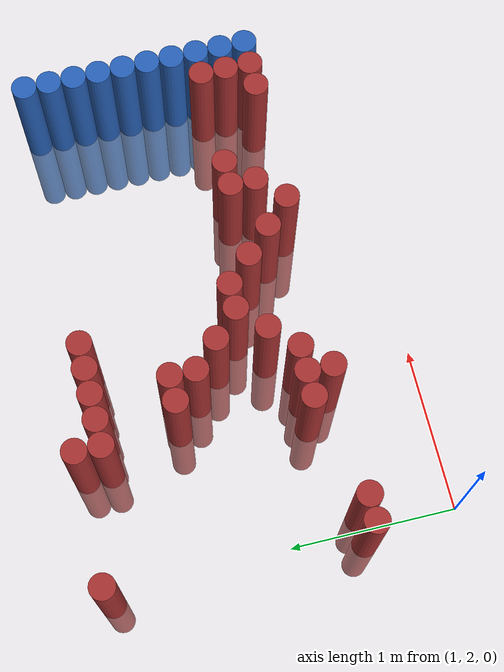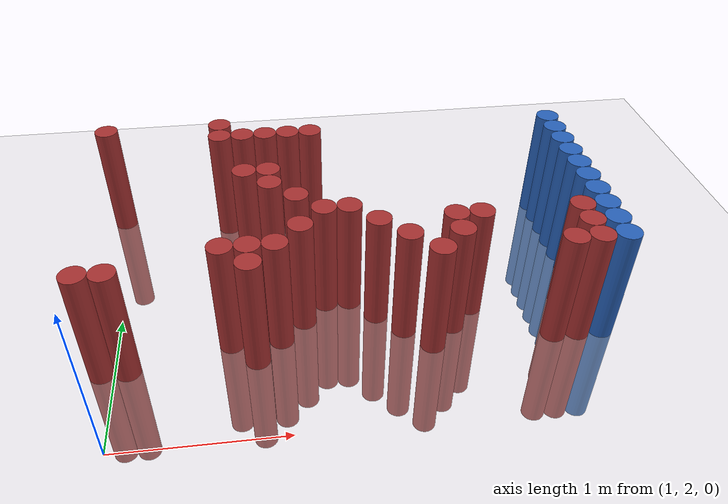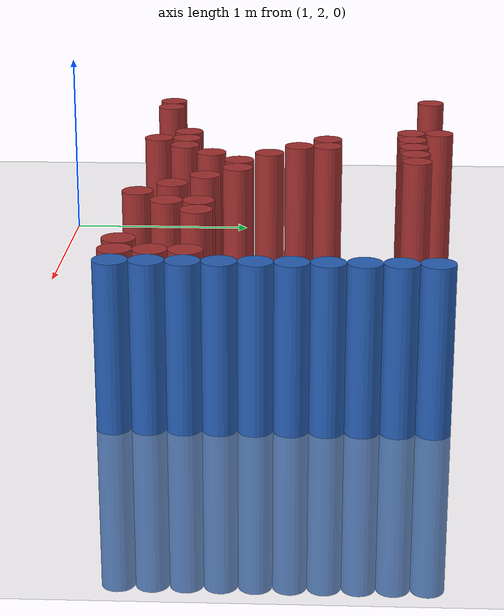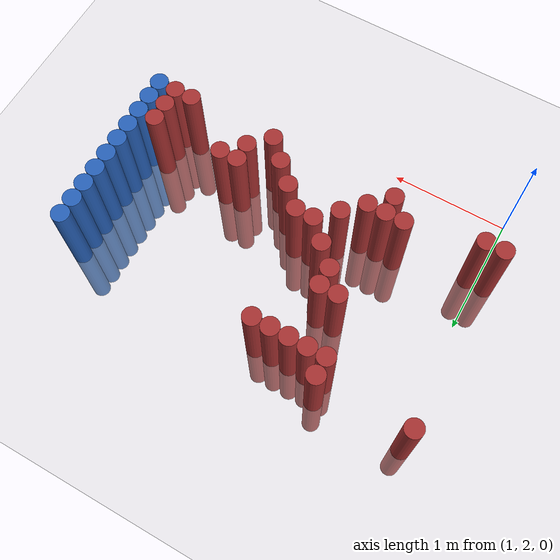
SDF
<sdf version="1.6">
 <world name="default">
  <model name="ground_plane">
   <static>1</static>
   <link name="link">
    <collision name="collision">
     <geometry><plane><normal>0 0 1</normal><size>100 100</size></plane></geometry>
     <surface><friction><ode><mu>100</mu><mu2>50</mu2></ode></friction></surface>
    </collision>
    <visual name="visual">
     <cast_shadows>0</cast_shadows>
     <geometry><plane><normal>0 0 1</normal><size>100 100</size></plane></geometry>
     <material>
      <script><uri>file://media/materials/scripts/gazebo.material</uri><name>Gazebo/Grey</name></script>
     </material>
    </visual>
   </link>
  </model>
  <model name="unit_cylinder_148">
   <static>1</static>
   <pose>3.925000 2.575000 0.000000 0.000000 0.000000 0.000000</pose>
   <link name="link">
    <inertial>
     <mass>1</mass>
     <inertia><ixx>0.145833</ixx><ixy>0</ixy><ixz>0</ixz><iyy>0.145833</iyy><iyz>0</iyz><izz>0.125</izz></inertia>
    </inertial>
    <collision name="collision">
     <geometry><cylinder><radius>0.075000</radius><length>1.5</length></cylinder></geometry>
    </collision>
    <visual name="visual">
     <geometry><cylinder><radius>0.075000</radius><length>1.5</length></cylinder></geometry>
     <material>
      <ambient>0.152000 0.379000 0.720000 1</ambient>
      <diffuse>0.152000 0.379000 0.720000 1</diffuse>
     </material>
     <material>
      <script><name>Gazebo/Grey</name><uri>file://media/materials/scripts/gazebo.material</uri></script>
     </material>
    </visual>
   </link>
  </model>
  <model name="unit_cylinder_150">
   <static>1</static>
   <pose>3.925000 2.725000 0.000000 0.000000 0.000000 0.000000</pose>
   <link name="link">
    <inertial>
     <mass>1</mass>
     <inertia><ixx>0.145833</ixx><ixy>0</ixy><ixz>0</ixz><iyy>0.145833</iyy><iyz>0</iyz><izz>0.125</izz></inertia>
    </inertial>
    <collision name="collision">
     <geometry><cylinder><radius>0.075000</radius><length>1.5</length></cylinder></geometry>
    </collision>
    <visual name="visual">
     <geometry><cylinder><radius>0.075000</radius><length>1.5</length></cylinder></geometry>
     <material>
      <ambient>0.152000 0.379000 0.720000 1</ambient>
      <diffuse>0.152000 0.379000 0.720000 1</diffuse>
     </material>
     <material>
      <script><name>Gazebo/Grey</name><uri>file://media/materials/scripts/gazebo.material</uri></script>
     </material>
    </visual>
   </link>
  </model>
  <model name="unit_cylinder_152">
   <static>1</static>
   <pose>3.925000 2.875000 0.000000 0.000000 0.000000 0.000000</pose>
   <link name="link">
    <inertial>
     <mass>1</mass>
     <inertia><ixx>0.145833</ixx><ixy>0</ixy><ixz>0</ixz><iyy>0.145833</iyy><iyz>0</iyz><izz>0.125</izz></inertia>
    </inertial>
    <collision name="collision">
     <geometry><cylinder><radius>0.075000</radius><length>1.5</length></cylinder></geometry>
    </collision>
    <visual name="visual">
     <geometry><cylinder><radius>0.075000</radius><length>1.5</length></cylinder></geometry>
     <material>
      <ambient>0.152000 0.379000 0.720000 1</ambient>
      <diffuse>0.152000 0.379000 0.720000 1</diffuse>
     </material>
     <material>
      <script><name>Gazebo/Grey</name><uri>file://media/materials/scripts/gazebo.material</uri></script>
     </material>
    </visual>
   </link>
  </model>
  <model name="unit_cylinder_154">
   <static>1</static>
   <pose>3.925000 3.025000 0.000000 0.000000 0.000000 0.000000</pose>
   <link name="link">
    <inertial>
     <mass>1</mass>
     <inertia><ixx>0.145833</ixx><ixy>0</ixy><ixz>0</ixz><iyy>0.145833</iyy><iyz>0</iyz><izz>0.125</izz></inertia>
    </inertial>
    <collision name="collision">
     <geometry><cylinder><radius>0.075000</radius><length>1.5</length></cylinder></geometry>
    </collision>
    <visual name="visual">
     <geometry><cylinder><radius>0.075000</radius><length>1.5</length></cylinder></geometry>
     <material>
      <ambient>0.152000 0.379000 0.720000 1</ambient>
      <diffuse>0.152000 0.379000 0.720000 1</diffuse>
     </material>
     <material>
      <script><name>Gazebo/Grey</name><uri>file://media/materials/scripts/gazebo.material</uri></script>
     </material>
    </visual>
   </link>
  </model>
  <model name="unit_cylinder_156">
   <static>1</static>
   <pose>3.925000 3.175000 0.000000 0.000000 0.000000 0.000000</pose>
   <link name="link">
    <inertial>
     <mass>1</mass>
     <inertia><ixx>0.145833</ixx><ixy>0</ixy><ixz>0</ixz><iyy>0.145833</iyy><iyz>0</iyz><izz>0.125</izz></inertia>
    </inertial>
    <collision name="collision">
     <geometry><cylinder><radius>0.075000</radius><length>1.5</length></cylinder></geometry>
    </collision>
    <visual name="visual">
     <geometry><cylinder><radius>0.075000</radius><length>1.5</length></cylinder></geometry>
     <material>
      <ambient>0.152000 0.379000 0.720000 1</ambient>
      <diffuse>0.152000 0.379000 0.720000 1</diffuse>
     </material>
     <material>
      <script><name>Gazebo/Grey</name><uri>file://media/materials/scripts/gazebo.material</uri></script>
     </material>
    </visual>
   </link>
  </model>
  <model name="unit_cylinder_158">
   <static>1</static>
   <pose>3.925000 3.325000 0.000000 0.000000 0.000000 0.000000</pose>
   <link name="link">
    <inertial>
     <mass>1</mass>
     <inertia><ixx>0.145833</ixx><ixy>0</ixy><ixz>0</ixz><iyy>0.145833</iyy><iyz>0</iyz><izz>0.125</izz></inertia>
    </inertial>
    <collision name="collision">
     <geometry><cylinder><radius>0.075000</radius><length>1.5</length></cylinder></geometry>
    </collision>
    <visual name="visual">
     <geometry><cylinder><radius>0.075000</radius><length>1.5</length></cylinder></geometry>
     <material>
      <ambient>0.152000 0.379000 0.720000 1</ambient>
      <diffuse>0.152000 0.379000 0.720000 1</diffuse>
     </material>
     <material>
      <script><name>Gazebo/Grey</name><uri>file://media/materials/scripts/gazebo.material</uri></script>
     </material>
    </visual>
   </link>
  </model>
  <model name="unit_cylinder_160">
   <static>1</static>
   <pose>3.925000 3.475000 0.000000 0.000000 0.000000 0.000000</pose>
   <link name="link">
    <inertial>
     <mass>1</mass>
     <inertia><ixx>0.145833</ixx><ixy>0</ixy><ixz>0</ixz><iyy>0.145833</iyy><iyz>0</iyz><izz>0.125</izz></inertia>
    </inertial>
    <collision name="collision">
     <geometry><cylinder><radius>0.075000</radius><length>1.5</length></cylinder></geometry>
    </collision>
    <visual name="visual">
     <geometry><cylinder><radius>0.075000</radius><length>1.5</length></cylinder></geometry>
     <material>
      <ambient>0.152000 0.379000 0.720000 1</ambient>
      <diffuse>0.152000 0.379000 0.720000 1</diffuse>
     </material>
     <material>
      <script><name>Gazebo/Grey</name><uri>file://media/materials/scripts/gazebo.material</uri></script>
     </material>
    </visual>
   </link>
  </model>
  <model name="unit_cylinder_162">
   <static>1</static>
   <pose>3.925000 3.625000 0.000000 0.000000 0.000000 0.000000</pose>
   <link name="link">
    <inertial>
     <mass>1</mass>
     <inertia><ixx>0.145833</ixx><ixy>0</ixy><ixz>0</ixz><iyy>0.145833</iyy><iyz>0</iyz><izz>0.125</izz></inertia>
    </inertial>
    <collision name="collision">
     <geometry><cylinder><radius>0.075000</radius><length>1.5</length></cylinder></geometry>
    </collision>
    <visual name="visual">
     <geometry><cylinder><radius>0.075000</radius><length>1.5</length></cylinder></geometry>
     <material>
      <ambient>0.152000 0.379000 0.720000 1</ambient>
      <diffuse>0.152000 0.379000 0.720000 1</diffuse>
     </material>
     <material>
      <script><name>Gazebo/Grey</name><uri>file://media/materials/scripts/gazebo.material</uri></script>
     </material>
    </visual>
   </link>
  </model>
  <model name="unit_cylinder_164">
   <static>1</static>
   <pose>3.925000 3.775000 0.000000 0.000000 0.000000 0.000000</pose>
   <link name="link">
    <inertial>
     <mass>1</mass>
     <inertia><ixx>0.145833</ixx><ixy>0</ixy><ixz>0</ixz><iyy>0.145833</iyy><iyz>0</iyz><izz>0.125</izz></inertia>
    </inertial>
    <collision name="collision">
     <geometry><cylinder><radius>0.075000</radius><length>1.5</length></cylinder></geometry>
    </collision>
    <visual name="visual">
     <geometry><cylinder><radius>0.075000</radius><length>1.5</length></cylinder></geometry>
     <material>
      <ambient>0.152000 0.379000 0.720000 1</ambient>
      <diffuse>0.152000 0.379000 0.720000 1</diffuse>
     </material>
     <material>
      <script><name>Gazebo/Grey</name><uri>file://media/materials/scripts/gazebo.material</uri></script>
     </material>
    </visual>
   </link>
  </model>
  <model name="unit_cylinder_166">
   <static>1</static>
   <pose>3.925000 3.925000 0.000000 0.000000 0.000000 0.000000</pose>
   <link name="link">
    <inertial>
     <mass>1</mass>
     <inertia><ixx>0.145833</ixx><ixy>0</ixy><ixz>0</ixz><iyy>0.145833</iyy><iyz>0</iyz><izz>0.125</izz></inertia>
    </inertial>
    <collision name="collision">
     <geometry><cylinder><radius>0.075000</radius><length>1.5</length></cylinder></geometry>
    </collision>
    <visual name="visual">
     <geometry><cylinder><radius>0.075000</radius><length>1.5</length></cylinder></geometry>
     <material>
      <ambient>0.152000 0.379000 0.720000 1</ambient>
      <diffuse>0.152000 0.379000 0.720000 1</diffuse>
     </material>
     <material>
      <script><name>Gazebo/Grey</name><uri>file://media/materials/scripts/gazebo.material</uri></script>
     </material>
    </visual>
   </link>
  </model>
  <model name="unit_cylinder_386">
   <static>1</static>
   <pose>0.925000 2.575000 0.000000 0.000000 0.000000 0.000000</pose>
   <link name="link">
    <inertial>
     <mass>1</mass>
     <inertia><ixx>0.145833</ixx><ixy>0</ixy><ixz>0</ixz><iyy>0.145833</iyy><iyz>0</iyz><izz>0.125</izz></inertia>
    </inertial>
    <collision name="collision">
     <geometry><cylinder><radius>0.075000</radius><length>1.5</length></cylinder></geometry>
    </collision>
    <visual name="visual">
     <geometry><cylinder><radius>0.075000</radius><length>1.5</length></cylinder></geometry>
     <material>
      <ambient>0.648000 0.192000 0.192000 1</ambient>
      <diffuse>0.648000 0.192000 0.192000 1</diffuse>
     </material>
     <material>
      <script><name>Gazebo/Grey</name><uri>file://media/materials/scripts/gazebo.material</uri></script>
     </material>
    </visual>
   </link>
  </model>
  <model name="unit_cylinder_387">
   <static>1</static>
   <pose>0.925000 4.075000 0.000000 0.000000 0.000000 0.000000</pose>
   <link name="link">
    <inertial>
     <mass>1</mass>
     <inertia><ixx>0.145833</ixx><ixy>0</ixy><ixz>0</ixz><iyy>0.145833</iyy><iyz>0</iyz><izz>0.125</izz></inertia>
    </inertial>
    <collision name="collision">
     <geometry><cylinder><radius>0.075000</radius><length>1.5</length></cylinder></geometry>
    </collision>
    <visual name="visual">
     <geometry><cylinder><radius>0.075000</radius><length>1.5</length></cylinder></geometry>
     <material>
      <ambient>0.648000 0.192000 0.192000 1</ambient>
      <diffuse>0.648000 0.192000 0.192000 1</diffuse>
     </material>
     <material>
      <script><name>Gazebo/Grey</name><uri>file://media/materials/scripts/gazebo.material</uri></script>
     </material>
    </visual>
   </link>
  </model>
  <model name="unit_cylinder_391">
   <static>1</static>
   <pose>1.075000 2.575000 0.000000 0.000000 0.000000 0.000000</pose>
   <link name="link">
    <inertial>
     <mass>1</mass>
     <inertia><ixx>0.145833</ixx><ixy>0</ixy><ixz>0</ixz><iyy>0.145833</iyy><iyz>0</iyz><izz>0.125</izz></inertia>
    </inertial>
    <collision name="collision">
     <geometry><cylinder><radius>0.075000</radius><length>1.5</length></cylinder></geometry>
    </collision>
    <visual name="visual">
     <geometry><cylinder><radius>0.075000</radius><length>1.5</length></cylinder></geometry>
     <material>
      <ambient>0.648000 0.192000 0.192000 1</ambient>
      <diffuse>0.648000 0.192000 0.192000 1</diffuse>
     </material>
     <material>
      <script><name>Gazebo/Grey</name><uri>file://media/materials/scripts/gazebo.material</uri></script>
     </material>
    </visual>
   </link>
  </model>
  <model name="unit_cylinder_401">
   <static>1</static>
   <pose>1.675000 2.725000 0.000000 0.000000 0.000000 0.000000</pose>
   <link name="link">
    <inertial>
     <mass>1</mass>
     <inertia><ixx>0.145833</ixx><ixy>0</ixy><ixz>0</ixz><iyy>0.145833</iyy><iyz>0</iyz><izz>0.125</izz></inertia>
    </inertial>
    <collision name="collision">
     <geometry><cylinder><radius>0.075000</radius><length>1.5</length></cylinder></geometry>
    </collision>
    <visual name="visual">
     <geometry><cylinder><radius>0.075000</radius><length>1.5</length></cylinder></geometry>
     <material>
      <ambient>0.648000 0.192000 0.192000 1</ambient>
      <diffuse>0.648000 0.192000 0.192000 1</diffuse>
     </material>
     <material>
      <script><name>Gazebo/Grey</name><uri>file://media/materials/scripts/gazebo.material</uri></script>
     </material>
    </visual>
   </link>
  </model>
  <model name="unit_cylinder_402">
   <static>1</static>
   <pose>1.675000 3.925000 0.000000 0.000000 0.000000 0.000000</pose>
   <link name="link">
    <inertial>
     <mass>1</mass>
     <inertia><ixx>0.145833</ixx><ixy>0</ixy><ixz>0</ixz><iyy>0.145833</iyy><iyz>0</iyz><izz>0.125</izz></inertia>
    </inertial>
    <collision name="collision">
     <geometry><cylinder><radius>0.075000</radius><length>1.5</length></cylinder></geometry>
    </collision>
    <visual name="visual">
     <geometry><cylinder><radius>0.075000</radius><length>1.5</length></cylinder></geometry>
     <material>
      <ambient>0.648000 0.192000 0.192000 1</ambient>
      <diffuse>0.648000 0.192000 0.192000 1</diffuse>
     </material>
     <material>
      <script><name>Gazebo/Grey</name><uri>file://media/materials/scripts/gazebo.material</uri></script>
     </material>
    </visual>
   </link>
  </model>
  <model name="unit_cylinder_403">
   <static>1</static>
   <pose>1.675000 4.075000 0.000000 0.000000 0.000000 0.000000</pose>
   <link name="link">
    <inertial>
     <mass>1</mass>
     <inertia><ixx>0.145833</ixx><ixy>0</ixy><ixz>0</ixz><iyy>0.145833</iyy><iyz>0</iyz><izz>0.125</izz></inertia>
    </inertial>
    <collision name="collision">
     <geometry><cylinder><radius>0.075000</radius><length>1.5</length></cylinder></geometry>
    </collision>
    <visual name="visual">
     <geometry><cylinder><radius>0.075000</radius><length>1.5</length></cylinder></geometry>
     <material>
      <ambient>0.648000 0.192000 0.192000 1</ambient>
      <diffuse>0.648000 0.192000 0.192000 1</diffuse>
     </material>
     <material>
      <script><name>Gazebo/Grey</name><uri>file://media/materials/scripts/gazebo.material</uri></script>
     </material>
    </visual>
   </link>
  </model>
  <model name="unit_cylinder_408">
   <static>1</static>
   <pose>1.825000 2.575000 0.000000 0.000000 0.000000 0.000000</pose>
   <link name="link">
    <inertial>
     <mass>1</mass>
     <inertia><ixx>0.145833</ixx><ixy>0</ixy><ixz>0</ixz><iyy>0.145833</iyy><iyz>0</iyz><izz>0.125</izz></inertia>
    </inertial>
    <collision name="collision">
     <geometry><cylinder><radius>0.075000</radius><length>1.5</length></cylinder></geometry>
    </collision>
    <visual name="visual">
     <geometry><cylinder><radius>0.075000</radius><length>1.5</length></cylinder></geometry>
     <material>
      <ambient>0.648000 0.192000 0.192000 1</ambient>
      <diffuse>0.648000 0.192000 0.192000 1</diffuse>
     </material>
     <material>
      <script><name>Gazebo/Grey</name><uri>file://media/materials/scripts/gazebo.material</uri></script>
     </material>
    </visual>
   </link>
  </model>
  <model name="unit_cylinder_409">
   <static>1</static>
   <pose>1.825000 2.725000 0.000000 0.000000 0.000000 0.000000</pose>
   <link name="link">
    <inertial>
     <mass>1</mass>
     <inertia><ixx>0.145833</ixx><ixy>0</ixy><ixz>0</ixz><iyy>0.145833</iyy><iyz>0</iyz><izz>0.125</izz></inertia>
    </inertial>
    <collision name="collision">
     <geometry><cylinder><radius>0.075000</radius><length>1.5</length></cylinder></geometry>
    </collision>
    <visual name="visual">
     <geometry><cylinder><radius>0.075000</radius><length>1.5</length></cylinder></geometry>
     <material>
      <ambient>0.648000 0.192000 0.192000 1</ambient>
      <diffuse>0.648000 0.192000 0.192000 1</diffuse>
     </material>
     <material>
      <script><name>Gazebo/Grey</name><uri>file://media/materials/scripts/gazebo.material</uri></script>
     </material>
    </visual>
   </link>
  </model>
  <model name="unit_cylinder_410">
   <static>1</static>
   <pose>1.825000 3.475000 0.000000 0.000000 0.000000 0.000000</pose>
   <link name="link">
    <inertial>
     <mass>1</mass>
     <inertia><ixx>0.145833</ixx><ixy>0</ixy><ixz>0</ixz><iyy>0.145833</iyy><iyz>0</iyz><izz>0.125</izz></inertia>
    </inertial>
    <collision name="collision">
     <geometry><cylinder><radius>0.075000</radius><length>1.5</length></cylinder></geometry>
    </collision>
    <visual name="visual">
     <geometry><cylinder><radius>0.075000</radius><length>1.5</length></cylinder></geometry>
     <material>
      <ambient>0.648000 0.192000 0.192000 1</ambient>
      <diffuse>0.648000 0.192000 0.192000 1</diffuse>
     </material>
     <material>
      <script><name>Gazebo/Grey</name><uri>file://media/materials/scripts/gazebo.material</uri></script>
     </material>
    </visual>
   </link>
  </model>
  <model name="unit_cylinder_411">
   <static>1</static>
   <pose>1.825000 3.925000 0.000000 0.000000 0.000000 0.000000</pose>
   <link name="link">
    <inertial>
     <mass>1</mass>
     <inertia><ixx>0.145833</ixx><ixy>0</ixy><ixz>0</ixz><iyy>0.145833</iyy><iyz>0</iyz><izz>0.125</izz></inertia>
    </inertial>
    <collision name="collision">
     <geometry><cylinder><radius>0.075000</radius><length>1.5</length></cylinder></geometry>
    </collision>
    <visual name="visual">
     <geometry><cylinder><radius>0.075000</radius><length>1.5</length></cylinder></geometry>
     <material>
      <ambient>0.648000 0.192000 0.192000 1</ambient>
      <diffuse>0.648000 0.192000 0.192000 1</diffuse>
     </material>
     <material>
      <script><name>Gazebo/Grey</name><uri>file://media/materials/scripts/gazebo.material</uri></script>
     </material>
    </visual>
   </link>
  </model>
  <model name="unit_cylinder_415">
   <static>1</static>
   <pose>1.975000 2.725000 0.000000 0.000000 0.000000 0.000000</pose>
   <link name="link">
    <inertial>
     <mass>1</mass>
     <inertia><ixx>0.145833</ixx><ixy>0</ixy><ixz>0</ixz><iyy>0.145833</iyy><iyz>0</iyz><izz>0.125</izz></inertia>
    </inertial>
    <collision name="collision">
     <geometry><cylinder><radius>0.075000</radius><length>1.5</length></cylinder></geometry>
    </collision>
    <visual name="visual">
     <geometry><cylinder><radius>0.075000</radius><length>1.5</length></cylinder></geometry>
     <material>
      <ambient>0.648000 0.192000 0.192000 1</ambient>
      <diffuse>0.648000 0.192000 0.192000 1</diffuse>
     </material>
     <material>
      <script><name>Gazebo/Grey</name><uri>file://media/materials/scripts/gazebo.material</uri></script>
     </material>
    </visual>
   </link>
  </model>
  <model name="unit_cylinder_416">
   <static>1</static>
   <pose>1.975000 3.325000 0.000000 0.000000 0.000000 0.000000</pose>
   <link name="link">
    <inertial>
     <mass>1</mass>
     <inertia><ixx>0.145833</ixx><ixy>0</ixy><ixz>0</ixz><iyy>0.145833</iyy><iyz>0</iyz><izz>0.125</izz></inertia>
    </inertial>
    <collision name="collision">
     <geometry><cylinder><radius>0.075000</radius><length>1.5</length></cylinder></geometry>
    </collision>
    <visual name="visual">
     <geometry><cylinder><radius>0.075000</radius><length>1.5</length></cylinder></geometry>
     <material>
      <ambient>0.648000 0.192000 0.192000 1</ambient>
      <diffuse>0.648000 0.192000 0.192000 1</diffuse>
     </material>
     <material>
      <script><name>Gazebo/Grey</name><uri>file://media/materials/scripts/gazebo.material</uri></script>
     </material>
    </visual>
   </link>
  </model>
  <model name="unit_cylinder_417">
   <static>1</static>
   <pose>1.975000 3.475000 0.000000 0.000000 0.000000 0.000000</pose>
   <link name="link">
    <inertial>
     <mass>1</mass>
     <inertia><ixx>0.145833</ixx><ixy>0</ixy><ixz>0</ixz><iyy>0.145833</iyy><iyz>0</iyz><izz>0.125</izz></inertia>
    </inertial>
    <collision name="collision">
     <geometry><cylinder><radius>0.075000</radius><length>1.5</length></cylinder></geometry>
    </collision>
    <visual name="visual">
     <geometry><cylinder><radius>0.075000</radius><length>1.5</length></cylinder></geometry>
     <material>
      <ambient>0.648000 0.192000 0.192000 1</ambient>
      <diffuse>0.648000 0.192000 0.192000 1</diffuse>
     </material>
     <material>
      <script><name>Gazebo/Grey</name><uri>file://media/materials/scripts/gazebo.material</uri></script>
     </material>
    </visual>
   </link>
  </model>
  <model name="unit_cylinder_418">
   <static>1</static>
   <pose>1.975000 3.925000 0.000000 0.000000 0.000000 0.000000</pose>
   <link name="link">
    <inertial>
     <mass>1</mass>
     <inertia><ixx>0.145833</ixx><ixy>0</ixy><ixz>0</ixz><iyy>0.145833</iyy><iyz>0</iyz><izz>0.125</izz></inertia>
    </inertial>
    <collision name="collision">
     <geometry><cylinder><radius>0.075000</radius><length>1.5</length></cylinder></geometry>
    </collision>
    <visual name="visual">
     <geometry><cylinder><radius>0.075000</radius><length>1.5</length></cylinder></geometry>
     <material>
      <ambient>0.648000 0.192000 0.192000 1</ambient>
      <diffuse>0.648000 0.192000 0.192000 1</diffuse>
     </material>
     <material>
      <script><name>Gazebo/Grey</name><uri>file://media/materials/scripts/gazebo.material</uri></script>
     </material>
    </visual>
   </link>
  </model>
  <model name="unit_cylinder_423">
   <static>1</static>
   <pose>2.125000 2.875000 0.000000 0.000000 0.000000 0.000000</pose>
   <link name="link">
    <inertial>
     <mass>1</mass>
     <inertia><ixx>0.145833</ixx><ixy>0</ixy><ixz>0</ixz><iyy>0.145833</iyy><iyz>0</iyz><izz>0.125</izz></inertia>
    </inertial>
    <collision name="collision">
     <geometry><cylinder><radius>0.075000</radius><length>1.5</length></cylinder></geometry>
    </collision>
    <visual name="visual">
     <geometry><cylinder><radius>0.075000</radius><length>1.5</length></cylinder></geometry>
     <material>
      <ambient>0.648000 0.192000 0.192000 1</ambient>
      <diffuse>0.648000 0.192000 0.192000 1</diffuse>
     </material>
     <material>
      <script><name>Gazebo/Grey</name><uri>file://media/materials/scripts/gazebo.material</uri></script>
     </material>
    </visual>
   </link>
  </model>
  <model name="unit_cylinder_424">
   <static>1</static>
   <pose>2.125000 3.175000 0.000000 0.000000 0.000000 0.000000</pose>
   <link name="link">
    <inertial>
     <mass>1</mass>
     <inertia><ixx>0.145833</ixx><ixy>0</ixy><ixz>0</ixz><iyy>0.145833</iyy><iyz>0</iyz><izz>0.125</izz></inertia>
    </inertial>
    <collision name="collision">
     <geometry><cylinder><radius>0.075000</radius><length>1.5</length></cylinder></geometry>
    </collision>
    <visual name="visual">
     <geometry><cylinder><radius>0.075000</radius><length>1.5</length></cylinder></geometry>
     <material>
      <ambient>0.648000 0.192000 0.192000 1</ambient>
      <diffuse>0.648000 0.192000 0.192000 1</diffuse>
     </material>
     <material>
      <script><name>Gazebo/Grey</name><uri>file://media/materials/scripts/gazebo.material</uri></script>
     </material>
    </visual>
   </link>
  </model>
  <model name="unit_cylinder_425">
   <static>1</static>
   <pose>2.125000 3.925000 0.000000 0.000000 0.000000 0.000000</pose>
   <link name="link">
    <inertial>
     <mass>1</mass>
     <inertia><ixx>0.145833</ixx><ixy>0</ixy><ixz>0</ixz><iyy>0.145833</iyy><iyz>0</iyz><izz>0.125</izz></inertia>
    </inertial>
    <collision name="collision">
     <geometry><cylinder><radius>0.075000</radius><length>1.5</length></cylinder></geometry>
    </collision>
    <visual name="visual">
     <geometry><cylinder><radius>0.075000</radius><length>1.5</length></cylinder></geometry>
     <material>
      <ambient>0.648000 0.192000 0.192000 1</ambient>
      <diffuse>0.648000 0.192000 0.192000 1</diffuse>
     </material>
     <material>
      <script><name>Gazebo/Grey</name><uri>file://media/materials/scripts/gazebo.material</uri></script>
     </material>
    </visual>
   </link>
  </model>
  <model name="unit_cylinder_430">
   <static>1</static>
   <pose>2.275000 3.025000 0.000000 0.000000 0.000000 0.000000</pose>
   <link name="link">
    <inertial>
     <mass>1</mass>
     <inertia><ixx>0.145833</ixx><ixy>0</ixy><ixz>0</ixz><iyy>0.145833</iyy><iyz>0</iyz><izz>0.125</izz></inertia>
    </inertial>
    <collision name="collision">
     <geometry><cylinder><radius>0.075000</radius><length>1.5</length></cylinder></geometry>
    </collision>
    <visual name="visual">
     <geometry><cylinder><radius>0.075000</radius><length>1.5</length></cylinder></geometry>
     <material>
      <ambient>0.648000 0.192000 0.192000 1</ambient>
      <diffuse>0.648000 0.192000 0.192000 1</diffuse>
     </material>
     <material>
      <script><name>Gazebo/Grey</name><uri>file://media/materials/scripts/gazebo.material</uri></script>
     </material>
    </visual>
   </link>
  </model>
  <model name="unit_cylinder_431">
   <static>1</static>
   <pose>2.275000 3.925000 0.000000 0.000000 0.000000 0.000000</pose>
   <link name="link">
    <inertial>
     <mass>1</mass>
     <inertia><ixx>0.145833</ixx><ixy>0</ixy><ixz>0</ixz><iyy>0.145833</iyy><iyz>0</iyz><izz>0.125</izz></inertia>
    </inertial>
    <collision name="collision">
     <geometry><cylinder><radius>0.075000</radius><length>1.5</length></cylinder></geometry>
    </collision>
    <visual name="visual">
     <geometry><cylinder><radius>0.075000</radius><length>1.5</length></cylinder></geometry>
     <material>
      <ambient>0.648000 0.192000 0.192000 1</ambient>
      <diffuse>0.648000 0.192000 0.192000 1</diffuse>
     </material>
     <material>
      <script><name>Gazebo/Grey</name><uri>file://media/materials/scripts/gazebo.material</uri></script>
     </material>
    </visual>
   </link>
  </model>
  <model name="unit_cylinder_438">
   <static>1</static>
   <pose>2.425000 3.025000 0.000000 0.000000 0.000000 0.000000</pose>
   <link name="link">
    <inertial>
     <mass>1</mass>
     <inertia><ixx>0.145833</ixx><ixy>0</ixy><ixz>0</ixz><iyy>0.145833</iyy><iyz>0</iyz><izz>0.125</izz></inertia>
    </inertial>
    <collision name="collision">
     <geometry><cylinder><radius>0.075000</radius><length>1.5</length></cylinder></geometry>
    </collision>
    <visual name="visual">
     <geometry><cylinder><radius>0.075000</radius><length>1.5</length></cylinder></geometry>
     <material>
      <ambient>0.648000 0.192000 0.192000 1</ambient>
      <diffuse>0.648000 0.192000 0.192000 1</diffuse>
     </material>
     <material>
      <script><name>Gazebo/Grey</name><uri>file://media/materials/scripts/gazebo.material</uri></script>
     </material>
    </visual>
   </link>
  </model>
  <model name="unit_cylinder_444">
   <static>1</static>
   <pose>2.575000 2.875000 0.000000 0.000000 0.000000 0.000000</pose>
   <link name="link">
    <inertial>
     <mass>1</mass>
     <inertia><ixx>0.145833</ixx><ixy>0</ixy><ixz>0</ixz><iyy>0.145833</iyy><iyz>0</iyz><izz>0.125</izz></inertia>
    </inertial>
    <collision name="collision">
     <geometry><cylinder><radius>0.075000</radius><length>1.5</length></cylinder></geometry>
    </collision>
    <visual name="visual">
     <geometry><cylinder><radius>0.075000</radius><length>1.5</length></cylinder></geometry>
     <material>
      <ambient>0.648000 0.192000 0.192000 1</ambient>
      <diffuse>0.648000 0.192000 0.192000 1</diffuse>
     </material>
     <material>
      <script><name>Gazebo/Grey</name><uri>file://media/materials/scripts/gazebo.material</uri></script>
     </material>
    </visual>
   </link>
  </model>
  <model name="unit_cylinder_448">
   <static>1</static>
   <pose>2.725000 2.725000 0.000000 0.000000 0.000000 0.000000</pose>
   <link name="link">
    <inertial>
     <mass>1</mass>
     <inertia><ixx>0.145833</ixx><ixy>0</ixy><ixz>0</ixz><iyy>0.145833</iyy><iyz>0</iyz><izz>0.125</izz></inertia>
    </inertial>
    <collision name="collision">
     <geometry><cylinder><radius>0.075000</radius><length>1.5</length></cylinder></geometry>
    </collision>
    <visual name="visual">
     <geometry><cylinder><radius>0.075000</radius><length>1.5</length></cylinder></geometry>
     <material>
      <ambient>0.648000 0.192000 0.192000 1</ambient>
      <diffuse>0.648000 0.192000 0.192000 1</diffuse>
     </material>
     <material>
      <script><name>Gazebo/Grey</name><uri>file://media/materials/scripts/gazebo.material</uri></script>
     </material>
    </visual>
   </link>
  </model>
  <model name="unit_cylinder_449">
   <static>1</static>
   <pose>2.875000 2.575000 0.000000 0.000000 0.000000 0.000000</pose>
   <link name="link">
    <inertial>
     <mass>1</mass>
     <inertia><ixx>0.145833</ixx><ixy>0</ixy><ixz>0</ixz><iyy>0.145833</iyy><iyz>0</iyz><izz>0.125</izz></inertia>
    </inertial>
    <collision name="collision">
     <geometry><cylinder><radius>0.075000</radius><length>1.5</length></cylinder></geometry>
    </collision>
    <visual name="visual">
     <geometry><cylinder><radius>0.075000</radius><length>1.5</length></cylinder></geometry>
     <material>
      <ambient>0.648000 0.192000 0.192000 1</ambient>
      <diffuse>0.648000 0.192000 0.192000 1</diffuse>
     </material>
     <material>
      <script><name>Gazebo/Grey</name><uri>file://media/materials/scripts/gazebo.material</uri></script>
     </material>
    </visual>
   </link>
  </model>
  <model name="unit_cylinder_452">
   <static>1</static>
   <pose>3.025000 2.725000 0.000000 0.000000 0.000000 0.000000</pose>
   <link name="link">
    <inertial>
     <mass>1</mass>
     <inertia><ixx>0.145833</ixx><ixy>0</ixy><ixz>0</ixz><iyy>0.145833</iyy><iyz>0</iyz><izz>0.125</izz></inertia>
    </inertial>
    <collision name="collision">
     <geometry><cylinder><radius>0.075000</radius><length>1.5</length></cylinder></geometry>
    </collision>
    <visual name="visual">
     <geometry><cylinder><radius>0.075000</radius><length>1.5</length></cylinder></geometry>
     <material>
      <ambient>0.648000 0.192000 0.192000 1</ambient>
      <diffuse>0.648000 0.192000 0.192000 1</diffuse>
     </material>
     <material>
      <script><name>Gazebo/Grey</name><uri>file://media/materials/scripts/gazebo.material</uri></script>
     </material>
    </visual>
   </link>
  </model>
  <model name="unit_cylinder_453">
   <static>1</static>
   <pose>3.025000 2.875000 0.000000 0.000000 0.000000 0.000000</pose>
   <link name="link">
    <inertial>
     <mass>1</mass>
     <inertia><ixx>0.145833</ixx><ixy>0</ixy><ixz>0</ixz><iyy>0.145833</iyy><iyz>0</iyz><izz>0.125</izz></inertia>
    </inertial>
    <collision name="collision">
     <geometry><cylinder><radius>0.075000</radius><length>1.5</length></cylinder></geometry>
    </collision>
    <visual name="visual">
     <geometry><cylinder><radius>0.075000</radius><length>1.5</length></cylinder></geometry>
     <material>
      <ambient>0.648000 0.192000 0.192000 1</ambient>
      <diffuse>0.648000 0.192000 0.192000 1</diffuse>
     </material>
     <material>
      <script><name>Gazebo/Grey</name><uri>file://media/materials/scripts/gazebo.material</uri></script>
     </material>
    </visual>
   </link>
  </model>
  <model name="unit_cylinder_461">
   <static>1</static>
   <pose>3.175000 2.875000 0.000000 0.000000 0.000000 0.000000</pose>
   <link name="link">
    <inertial>
     <mass>1</mass>
     <inertia><ixx>0.145833</ixx><ixy>0</ixy><ixz>0</ixz><iyy>0.145833</iyy><iyz>0</iyz><izz>0.125</izz></inertia>
    </inertial>
    <collision name="collision">
     <geometry><cylinder><radius>0.075000</radius><length>1.5</length></cylinder></geometry>
    </collision>
    <visual name="visual">
     <geometry><cylinder><radius>0.075000</radius><length>1.5</length></cylinder></geometry>
     <material>
      <ambient>0.648000 0.192000 0.192000 1</ambient>
      <diffuse>0.648000 0.192000 0.192000 1</diffuse>
     </material>
     <material>
      <script><name>Gazebo/Grey</name><uri>file://media/materials/scripts/gazebo.material</uri></script>
     </material>
    </visual>
   </link>
  </model>
  <model name="unit_cylinder_491">
   <static>1</static>
   <pose>3.625000 2.575000 0.000000 0.000000 0.000000 0.000000</pose>
   <link name="link">
    <inertial>
     <mass>1</mass>
     <inertia><ixx>0.145833</ixx><ixy>0</ixy><ixz>0</ixz><iyy>0.145833</iyy><iyz>0</iyz><izz>0.125</izz></inertia>
    </inertial>
    <collision name="collision">
     <geometry><cylinder><radius>0.075000</radius><length>1.5</length></cylinder></geometry>
    </collision>
    <visual name="visual">
     <geometry><cylinder><radius>0.075000</radius><length>1.5</length></cylinder></geometry>
     <material>
      <ambient>0.648000 0.192000 0.192000 1</ambient>
      <diffuse>0.648000 0.192000 0.192000 1</diffuse>
     </material>
     <material>
      <script><name>Gazebo/Grey</name><uri>file://media/materials/scripts/gazebo.material</uri></script>
     </material>
    </visual>
   </link>
  </model>
  <model name="unit_cylinder_499">
   <static>1</static>
   <pose>3.775000 2.575000 0.000000 0.000000 0.000000 0.000000</pose>
   <link name="link">
    <inertial>
     <mass>1</mass>
     <inertia><ixx>0.145833</ixx><ixy>0</ixy><ixz>0</ixz><iyy>0.145833</iyy><iyz>0</iyz><izz>0.125</izz></inertia>
    </inertial>
    <collision name="collision">
     <geometry><cylinder><radius>0.075000</radius><length>1.5</length></cylinder></geometry>
    </collision>
    <visual name="visual">
     <geometry><cylinder><radius>0.075000</radius><length>1.5</length></cylinder></geometry>
     <material>
      <ambient>0.648000 0.192000 0.192000 1</ambient>
      <diffuse>0.648000 0.192000 0.192000 1</diffuse>
     </material>
     <material>
      <script><name>Gazebo/Grey</name><uri>file://media/materials/scripts/gazebo.material</uri></script>
     </material>
    </visual>
   </link>
  </model>
  <model name="unit_cylinder_500">
   <static>1</static>
   <pose>3.775000 2.725000 0.000000 0.000000 0.000000 0.000000</pose>
   <link name="link">
    <inertial>
     <mass>1</mass>
     <inertia><ixx>0.145833</ixx><ixy>0</ixy><ixz>0</ixz><iyy>0.145833</iyy><iyz>0</iyz><izz>0.125</izz></inertia>
    </inertial>
    <collision name="collision">
     <geometry><cylinder><radius>0.075000</radius><length>1.5</length></cylinder></geometry>
    </collision>
    <visual name="visual">
     <geometry><cylinder><radius>0.075000</radius><length>1.5</length></cylinder></geometry>
     <material>
      <ambient>0.648000 0.192000 0.192000 1</ambient>
      <diffuse>0.648000 0.192000 0.192000 1</diffuse>
     </material>
     <material>
      <script><name>Gazebo/Grey</name><uri>file://media/materials/scripts/gazebo.material</uri></script>
     </material>
    </visual>
   </link>
  </model>
  <model name="unit_cylinder_501">
   <static>1</static>
   <pose>3.775000 2.875000 0.000000 0.000000 0.000000 0.000000</pose>
   <link name="link">
    <inertial>
     <mass>1</mass>
     <inertia><ixx>0.145833</ixx><ixy>0</ixy><ixz>0</ixz><iyy>0.145833</iyy><iyz>0</iyz><izz>0.125</izz></inertia>
    </inertial>
    <collision name="collision">
     <geometry><cylinder><radius>0.075000</radius><length>1.5</length></cylinder></geometry>
    </collision>
    <visual name="visual">
     <geometry><cylinder><radius>0.075000</radius><length>1.5</length></cylinder></geometry>
     <material>
      <ambient>0.648000 0.192000 0.192000 1</ambient>
      <diffuse>0.648000 0.192000 0.192000 1</diffuse>
     </material>
     <material>
      <script><name>Gazebo/Grey</name><uri>file://media/materials/scripts/gazebo.material</uri></script>
     </material>
    </visual>
   </link>
  </model>
  <model name="unit_cylinder_532">
   <static>1</static>
   <pose>3.925000 2.575000 0.000000 0.000000 0.000000 0.000000</pose>
   <link name="link">
    <inertial>
     <mass>1</mass>
     <inertia><ixx>0.145833</ixx><ixy>0</ixy><ixz>0</ixz><iyy>0.145833</iyy><iyz>0</iyz><izz>0.125</izz></inertia>
    </inertial>
    <collision name="collision">
     <geometry><cylinder><radius>0.075000</radius><length>1.5</length></cylinder></geometry>
    </collision>
    <visual name="visual">
     <geometry><cylinder><radius>0.075000</radius><length>1.5</length></cylinder></geometry>
     <material>
      <ambient>0.152000 0.379000 0.720000 1</ambient>
      <diffuse>0.152000 0.379000 0.720000 1</diffuse>
     </material>
     <material>
      <script><name>Gazebo/Grey</name><uri>file://media/materials/scripts/gazebo.material</uri></script>
     </material>
    </visual>
   </link>
  </model>
  <model name="unit_cylinder_533">
   <static>1</static>
   <pose>3.925000 2.725000 0.000000 0.000000 0.000000 0.000000</pose>
   <link name="link">
    <inertial>
     <mass>1</mass>
     <inertia><ixx>0.145833</ixx><ixy>0</ixy><ixz>0</ixz><iyy>0.145833</iyy><iyz>0</iyz><izz>0.125</izz></inertia>
    </inertial>
    <collision name="collision">
     <geometry><cylinder><radius>0.075000</radius><length>1.5</length></cylinder></geometry>
    </collision>
    <visual name="visual">
     <geometry><cylinder><radius>0.075000</radius><length>1.5</length></cylinder></geometry>
     <material>
      <ambient>0.152000 0.379000 0.720000 1</ambient>
      <diffuse>0.152000 0.379000 0.720000 1</diffuse>
     </material>
     <material>
      <script><name>Gazebo/Grey</name><uri>file://media/materials/scripts/gazebo.material</uri></script>
     </material>
    </visual>
   </link>
  </model>
  <model name="unit_cylinder_534">
   <static>1</static>
   <pose>3.925000 2.875000 0.000000 0.000000 0.000000 0.000000</pose>
   <link name="link">
    <inertial>
     <mass>1</mass>
     <inertia><ixx>0.145833</ixx><ixy>0</ixy><ixz>0</ixz><iyy>0.145833</iyy><iyz>0</iyz><izz>0.125</izz></inertia>
    </inertial>
    <collision name="collision">
     <geometry><cylinder><radius>0.075000</radius><length>1.5</length></cylinder></geometry>
    </collision>
    <visual name="visual">
     <geometry><cylinder><radius>0.075000</radius><length>1.5</length></cylinder></geometry>
     <material>
      <ambient>0.152000 0.379000 0.720000 1</ambient>
      <diffuse>0.152000 0.379000 0.720000 1</diffuse>
     </material>
     <material>
      <script><name>Gazebo/Grey</name><uri>file://media/materials/scripts/gazebo.material</uri></script>
     </material>
    </visual>
   </link>
  </model>
  <model name="unit_cylinder_535">
   <static>1</static>
   <pose>3.925000 3.025000 0.000000 0.000000 0.000000 0.000000</pose>
   <link name="link">
    <inertial>
     <mass>1</mass>
     <inertia><ixx>0.145833</ixx><ixy>0</ixy><ixz>0</ixz><iyy>0.145833</iyy><iyz>0</iyz><izz>0.125</izz></inertia>
    </inertial>
    <collision name="collision">
     <geometry><cylinder><radius>0.075000</radius><length>1.5</length></cylinder></geometry>
    </collision>
    <visual name="visual">
     <geometry><cylinder><radius>0.075000</radius><length>1.5</length></cylinder></geometry>
     <material>
      <ambient>0.152000 0.379000 0.720000 1</ambient>
      <diffuse>0.152000 0.379000 0.720000 1</diffuse>
     </material>
     <material>
      <script><name>Gazebo/Grey</name><uri>file://media/materials/scripts/gazebo.material</uri></script>
     </material>
    </visual>
   </link>
  </model>
  <model name="unit_cylinder_536">
   <static>1</static>
   <pose>3.925000 3.175000 0.000000 0.000000 0.000000 0.000000</pose>
   <link name="link">
    <inertial>
     <mass>1</mass>
     <inertia><ixx>0.145833</ixx><ixy>0</ixy><ixz>0</ixz><iyy>0.145833</iyy><iyz>0</iyz><izz>0.125</izz></inertia>
    </inertial>
    <collision name="collision">
     <geometry><cylinder><radius>0.075000</radius><length>1.5</length></cylinder></geometry>
    </collision>
    <visual name="visual">
     <geometry><cylinder><radius>0.075000</radius><length>1.5</length></cylinder></geometry>
     <material>
      <ambient>0.152000 0.379000 0.720000 1</ambient>
      <diffuse>0.152000 0.379000 0.720000 1</diffuse>
     </material>
     <material>
      <script><name>Gazebo/Grey</name><uri>file://media/materials/scripts/gazebo.material</uri></script>
     </material>
    </visual>
   </link>
  </model>
  <model name="unit_cylinder_537">
   <static>1</static>
   <pose>3.925000 3.325000 0.000000 0.000000 0.000000 0.000000</pose>
   <link name="link">
    <inertial>
     <mass>1</mass>
     <inertia><ixx>0.145833</ixx><ixy>0</ixy><ixz>0</ixz><iyy>0.145833</iyy><iyz>0</iyz><izz>0.125</izz></inertia>
    </inertial>
    <collision name="collision">
     <geometry><cylinder><radius>0.075000</radius><length>1.5</length></cylinder></geometry>
    </collision>
    <visual name="visual">
     <geometry><cylinder><radius>0.075000</radius><length>1.5</length></cylinder></geometry>
     <material>
      <ambient>0.152000 0.379000 0.720000 1</ambient>
      <diffuse>0.152000 0.379000 0.720000 1</diffuse>
     </material>
     <material>
      <script><name>Gazebo/Grey</name><uri>file://media/materials/scripts/gazebo.material</uri></script>
     </material>
    </visual>
   </link>
  </model>
  <model name="unit_cylinder_538">
   <static>1</static>
   <pose>3.925000 3.475000 0.000000 0.000000 0.000000 0.000000</pose>
   <link name="link">
    <inertial>
     <mass>1</mass>
     <inertia><ixx>0.145833</ixx><ixy>0</ixy><ixz>0</ixz><iyy>0.145833</iyy><iyz>0</iyz><izz>0.125</izz></inertia>
    </inertial>
    <collision name="collision">
     <geometry><cylinder><radius>0.075000</radius><length>1.5</length></cylinder></geometry>
    </collision>
    <visual name="visual">
     <geometry><cylinder><radius>0.075000</radius><length>1.5</length></cylinder></geometry>
     <material>
      <ambient>0.152000 0.379000 0.720000 1</ambient>
      <diffuse>0.152000 0.379000 0.720000 1</diffuse>
     </material>
     <material>
      <script><name>Gazebo/Grey</name><uri>file://media/materials/scripts/gazebo.material</uri></script>
     </material>
    </visual>
   </link>
  </model>
  <model name="unit_cylinder_539">
   <static>1</static>
   <pose>3.925000 3.625000 0.000000 0.000000 0.000000 0.000000</pose>
   <link name="link">
    <inertial>
     <mass>1</mass>
     <inertia><ixx>0.145833</ixx><ixy>0</ixy><ixz>0</ixz><iyy>0.145833</iyy><iyz>0</iyz><izz>0.125</izz></inertia>
    </inertial>
    <collision name="collision">
     <geometry><cylinder><radius>0.075000</radius><length>1.5</length></cylinder></geometry>
    </collision>
    <visual name="visual">
     <geometry><cylinder><radius>0.075000</radius><length>1.5</length></cylinder></geometry>
     <material>
      <ambient>0.152000 0.379000 0.720000 1</ambient>
      <diffuse>0.152000 0.379000 0.720000 1</diffuse>
     </material>
     <material>
      <script><name>Gazebo/Grey</name><uri>file://media/materials/scripts/gazebo.material</uri></script>
     </material>
    </visual>
   </link>
  </model>
  <model name="unit_cylinder_540">
   <static>1</static>
   <pose>3.925000 3.775000 0.000000 0.000000 0.000000 0.000000</pose>
   <link name="link">
    <inertial>
     <mass>1</mass>
     <inertia><ixx>0.145833</ixx><ixy>0</ixy><ixz>0</ixz><iyy>0.145833</iyy><iyz>0</iyz><izz>0.125</izz></inertia>
    </inertial>
    <collision name="collision">
     <geometry><cylinder><radius>0.075000</radius><length>1.5</length></cylinder></geometry>
    </collision>
    <visual name="visual">
     <geometry><cylinder><radius>0.075000</radius><length>1.5</length></cylinder></geometry>
     <material>
      <ambient>0.152000 0.379000 0.720000 1</ambient>
      <diffuse>0.152000 0.379000 0.720000 1</diffuse>
     </material>
     <material>
      <script><name>Gazebo/Grey</name><uri>file://media/materials/scripts/gazebo.material</uri></script>
     </material>
    </visual>
   </link>
  </model>
  <model name="unit_cylinder_541">
   <static>1</static>
   <pose>3.925000 3.925000 0.000000 0.000000 0.000000 0.000000</pose>
   <link name="link">
    <inertial>
     <mass>1</mass>
     <inertia><ixx>0.145833</ixx><ixy>0</ixy><ixz>0</ixz><iyy>0.145833</iyy><iyz>0</iyz><izz>0.125</izz></inertia>
    </inertial>
    <collision name="collision">
     <geometry><cylinder><radius>0.075000</radius><length>1.5</length></cylinder></geometry>
    </collision>
    <visual name="visual">
     <geometry><cylinder><radius>0.075000</radius><length>1.5</length></cylinder></geometry>
     <material>
      <ambient>0.152000 0.379000 0.720000 1</ambient>
      <diffuse>0.152000 0.379000 0.720000 1</diffuse>
     </material>
     <material>
      <script><name>Gazebo/Grey</name><uri>file://media/materials/scripts/gazebo.material</uri></script>
     </material>
    </visual>
   </link>
  </model>
 </world>
</sdf>
